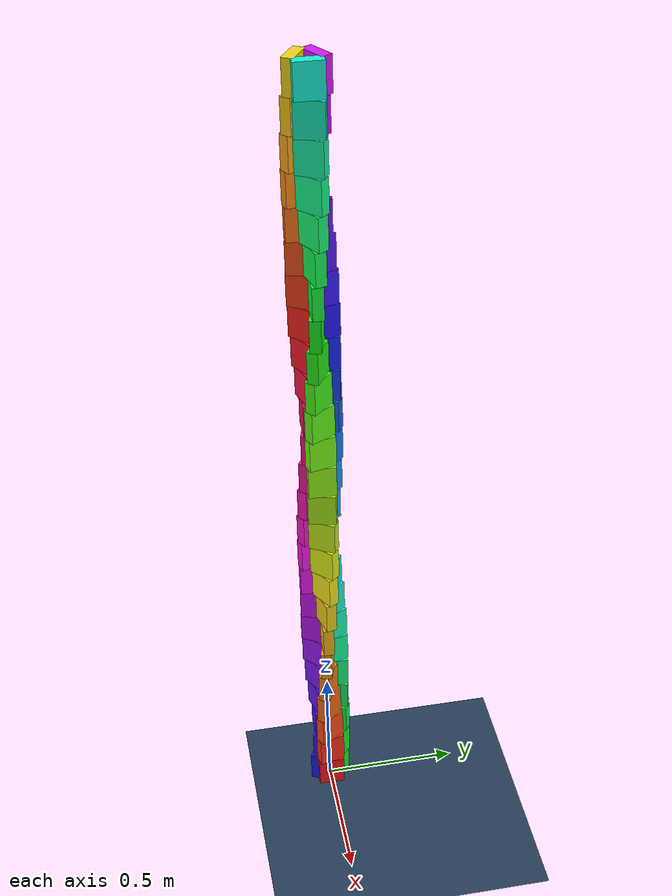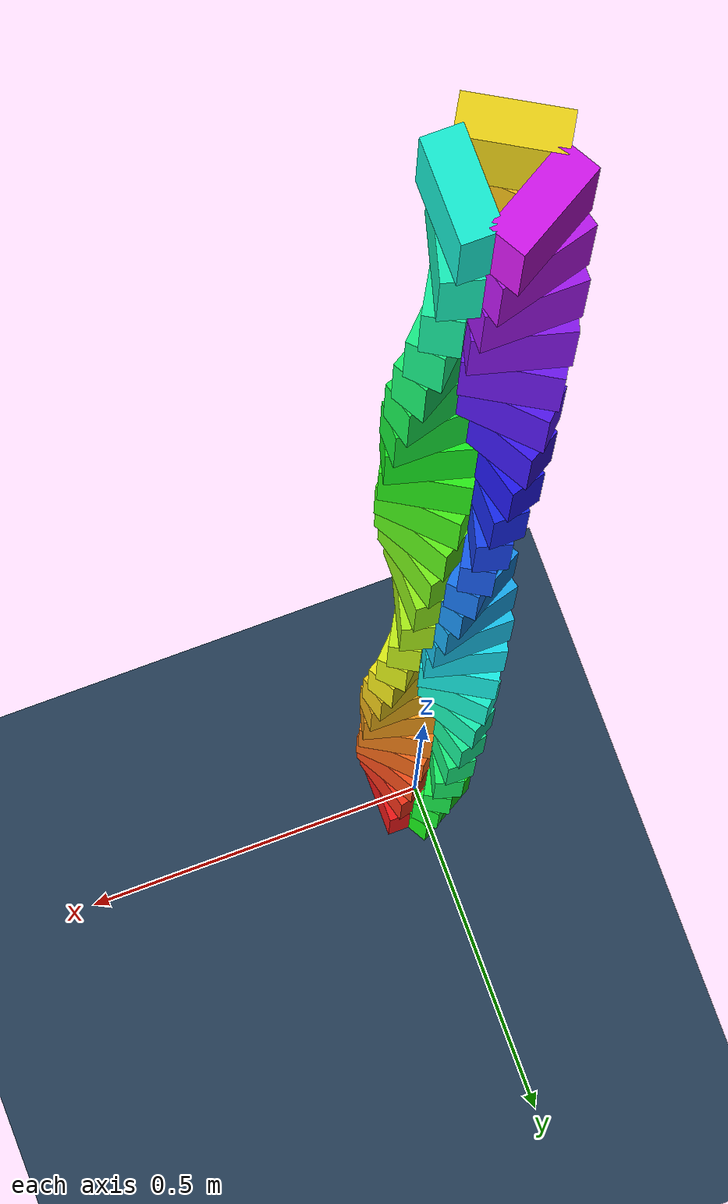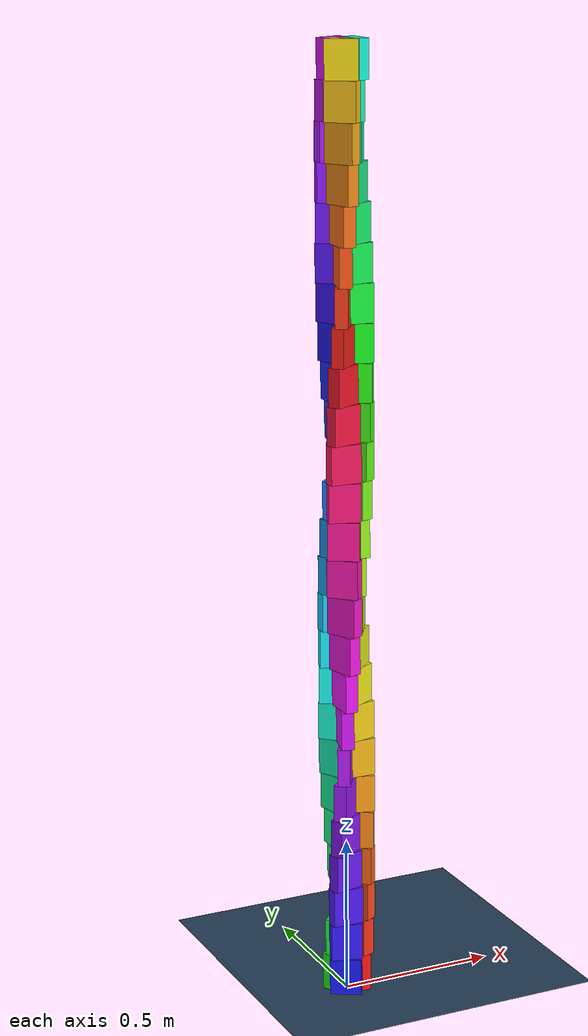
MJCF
<mujoco>
  <visual>
    <headlight diffuse="0.6 0.6 0.6" ambient="0.1 0.1 0.1" specular="0 0 0"/>
    <rgba haze="0.15 0.25 0.35 1"/>
    <global azimuth="120" elevation="-20"/>
  </visual>
  <asset>
    <texture type="skybox" builtin="gradient" rgb1="0.3 0.5 0.7" rgb2="0 0 0" width="512" height="3072"/>
    <texture type="2d" name="groundplane" builtin="checker" mark="edge" rgb1="0.2 0.3 0.4" rgb2="0.1 0.2 0.3" markrgb="0.8 0.8 0.8" width="300" height="300"/>
    <material name="groundplane" texture="groundplane" texuniform="true" texrepeat="5 5" reflectance="0.2"/>
  </asset>
  <worldbody>
    <light pos="0 0 1.5" dir="0 0 -1" directional="true"/>
    <geom name="floor" size="0 0 0.05" type="plane" material="groundplane"/>
    <body pos="0.0400 0.0000 0.0600" euler="0 0 0.0">
      <geom type="box" size="0.02 0.05 0.06" rgba="0.950 0.095 0.095 1"/>
      <freejoint/>
    </body>
    <body pos="0.0400 0.0000 0.1800" euler="0 0 15.0">
      <geom type="box" size="0.02 0.05 0.06" rgba="0.950 0.198 0.095 1"/>
      <freejoint/>
    </body>
    <body pos="0.0400 0.0000 0.3000" euler="0 0 30.0">
      <geom type="box" size="0.02 0.05 0.06" rgba="0.950 0.300 0.095 1"/>
      <freejoint/>
    </body>
    <body pos="0.0400 0.0000 0.4200" euler="0 0 45.0">
      <geom type="box" size="0.02 0.05 0.06" rgba="0.950 0.403 0.095 1"/>
      <freejoint/>
    </body>
    <body pos="0.0400 0.0000 0.5400" euler="0 0 60.0">
      <geom type="box" size="0.02 0.05 0.06" rgba="0.950 0.505 0.095 1"/>
      <freejoint/>
    </body>
    <body pos="0.0400 0.0000 0.6600" euler="0 0 75.0">
      <geom type="box" size="0.02 0.05 0.06" rgba="0.950 0.608 0.095 1"/>
      <freejoint/>
    </body>
    <body pos="0.0400 0.0000 0.7800" euler="0 0 90.0">
      <geom type="box" size="0.02 0.05 0.06" rgba="0.950 0.711 0.095 1"/>
      <freejoint/>
    </body>
    <body pos="0.0400 0.0000 0.9000" euler="0 0 105.0">
      <geom type="box" size="0.02 0.05 0.06" rgba="0.950 0.813 0.095 1"/>
      <freejoint/>
    </body>
    <body pos="0.0400 0.0000 1.0200" euler="0 0 120.0">
      <geom type="box" size="0.02 0.05 0.06" rgba="0.950 0.916 0.095 1"/>
      <freejoint/>
    </body>
    <body pos="0.0400 0.0000 1.1400" euler="0 0 135.0">
      <geom type="box" size="0.02 0.05 0.06" rgba="0.882 0.950 0.095 1"/>
      <freejoint/>
    </body>
    <body pos="0.0400 0.0000 1.2600" euler="0 0 150.0">
      <geom type="box" size="0.02 0.05 0.06" rgba="0.779 0.950 0.095 1"/>
      <freejoint/>
    </body>
    <body pos="0.0400 0.0000 1.3800" euler="0 0 165.0">
      <geom type="box" size="0.02 0.05 0.06" rgba="0.676 0.950 0.095 1"/>
      <freejoint/>
    </body>
    <body pos="0.0400 0.0000 1.5000" euler="0 0 180.0">
      <geom type="box" size="0.02 0.05 0.06" rgba="0.574 0.950 0.095 1"/>
      <freejoint/>
    </body>
    <body pos="0.0400 0.0000 1.6200" euler="0 0 195.0">
      <geom type="box" size="0.02 0.05 0.06" rgba="0.471 0.950 0.095 1"/>
      <freejoint/>
    </body>
    <body pos="0.0400 0.0000 1.7400" euler="0 0 210.0">
      <geom type="box" size="0.02 0.05 0.06" rgba="0.369 0.950 0.095 1"/>
      <freejoint/>
    </body>
    <body pos="0.0400 0.0000 1.8600" euler="0 0 225.0">
      <geom type="box" size="0.02 0.05 0.06" rgba="0.266 0.950 0.095 1"/>
      <freejoint/>
    </body>
    <body pos="0.0400 0.0000 1.9800" euler="0 0 240.0">
      <geom type="box" size="0.02 0.05 0.06" rgba="0.163 0.950 0.095 1"/>
      <freejoint/>
    </body>
    <body pos="0.0400 0.0000 2.1000" euler="0 0 255.0">
      <geom type="box" size="0.02 0.05 0.06" rgba="0.095 0.950 0.129 1"/>
      <freejoint/>
    </body>
    <body pos="0.0400 0.0000 2.2200" euler="0 0 270.0">
      <geom type="box" size="0.02 0.05 0.06" rgba="0.095 0.950 0.232 1"/>
      <freejoint/>
    </body>
    <body pos="0.0400 0.0000 2.3400" euler="0 0 285.0">
      <geom type="box" size="0.02 0.05 0.06" rgba="0.095 0.950 0.334 1"/>
      <freejoint/>
    </body>
    <body pos="0.0400 0.0000 2.4600" euler="0 0 300.0">
      <geom type="box" size="0.02 0.05 0.06" rgba="0.095 0.950 0.437 1"/>
      <freejoint/>
    </body>
    <body pos="0.0400 0.0000 2.5800" euler="0 0 315.0">
      <geom type="box" size="0.02 0.05 0.06" rgba="0.095 0.950 0.540 1"/>
      <freejoint/>
    </body>
    <body pos="0.0400 0.0000 2.7000" euler="0 0 330.0">
      <geom type="box" size="0.02 0.05 0.06" rgba="0.095 0.950 0.642 1"/>
      <freejoint/>
    </body>
    <body pos="0.0400 0.0000 2.8200" euler="0 0 345.0">
      <geom type="box" size="0.02 0.05 0.06" rgba="0.095 0.950 0.745 1"/>
      <freejoint/>
    </body>
    <body pos="0.0400 0.0000 2.9400" euler="0 0 360.0">
      <geom type="box" size="0.02 0.05 0.06" rgba="0.095 0.950 0.847 1"/>
      <freejoint/>
    </body>
    <body pos="-0.0200 0.0346 0.0600" euler="0 0 120.0">
      <geom type="box" size="0.02 0.05 0.06" rgba="0.095 0.950 0.095 1"/>
      <freejoint/>
    </body>
    <body pos="-0.0200 0.0346 0.1800" euler="0 0 135.0">
      <geom type="box" size="0.02 0.05 0.06" rgba="0.095 0.950 0.198 1"/>
      <freejoint/>
    </body>
    <body pos="-0.0200 0.0346 0.3000" euler="0 0 150.0">
      <geom type="box" size="0.02 0.05 0.06" rgba="0.095 0.950 0.300 1"/>
      <freejoint/>
    </body>
    <body pos="-0.0200 0.0346 0.4200" euler="0 0 165.0">
      <geom type="box" size="0.02 0.05 0.06" rgba="0.095 0.950 0.403 1"/>
      <freejoint/>
    </body>
    <body pos="-0.0200 0.0346 0.5400" euler="0 0 180.0">
      <geom type="box" size="0.02 0.05 0.06" rgba="0.095 0.950 0.505 1"/>
      <freejoint/>
    </body>
    <body pos="-0.0200 0.0346 0.6600" euler="0 0 195.0">
      <geom type="box" size="0.02 0.05 0.06" rgba="0.095 0.950 0.608 1"/>
      <freejoint/>
    </body>
    <body pos="-0.0200 0.0346 0.7800" euler="0 0 210.0">
      <geom type="box" size="0.02 0.05 0.06" rgba="0.095 0.950 0.711 1"/>
      <freejoint/>
    </body>
    <body pos="-0.0200 0.0346 0.9000" euler="0 0 225.0">
      <geom type="box" size="0.02 0.05 0.06" rgba="0.095 0.950 0.813 1"/>
      <freejoint/>
    </body>
    <body pos="-0.0200 0.0346 1.0200" euler="0 0 240.0">
      <geom type="box" size="0.02 0.05 0.06" rgba="0.095 0.950 0.916 1"/>
      <freejoint/>
    </body>
    <body pos="-0.0200 0.0346 1.1400" euler="0 0 255.0">
      <geom type="box" size="0.02 0.05 0.06" rgba="0.095 0.882 0.950 1"/>
      <freejoint/>
    </body>
    <body pos="-0.0200 0.0346 1.2600" euler="0 0 270.0">
      <geom type="box" size="0.02 0.05 0.06" rgba="0.095 0.779 0.950 1"/>
      <freejoint/>
    </body>
    <body pos="-0.0200 0.0346 1.3800" euler="0 0 285.0">
      <geom type="box" size="0.02 0.05 0.06" rgba="0.095 0.676 0.950 1"/>
      <freejoint/>
    </body>
    <body pos="-0.0200 0.0346 1.5000" euler="0 0 300.0">
      <geom type="box" size="0.02 0.05 0.06" rgba="0.095 0.574 0.950 1"/>
      <freejoint/>
    </body>
    <body pos="-0.0200 0.0346 1.6200" euler="0 0 315.0">
      <geom type="box" size="0.02 0.05 0.06" rgba="0.095 0.471 0.950 1"/>
      <freejoint/>
    </body>
    <body pos="-0.0200 0.0346 1.7400" euler="0 0 330.0">
      <geom type="box" size="0.02 0.05 0.06" rgba="0.095 0.369 0.950 1"/>
      <freejoint/>
    </body>
    <body pos="-0.0200 0.0346 1.8600" euler="0 0 345.0">
      <geom type="box" size="0.02 0.05 0.06" rgba="0.095 0.266 0.950 1"/>
      <freejoint/>
    </body>
    <body pos="-0.0200 0.0346 1.9800" euler="0 0 360.0">
      <geom type="box" size="0.02 0.05 0.06" rgba="0.095 0.163 0.950 1"/>
      <freejoint/>
    </body>
    <body pos="-0.0200 0.0346 2.1000" euler="0 0 375.0">
      <geom type="box" size="0.02 0.05 0.06" rgba="0.129 0.095 0.950 1"/>
      <freejoint/>
    </body>
    <body pos="-0.0200 0.0346 2.2200" euler="0 0 390.0">
      <geom type="box" size="0.02 0.05 0.06" rgba="0.232 0.095 0.950 1"/>
      <freejoint/>
    </body>
    <body pos="-0.0200 0.0346 2.3400" euler="0 0 405.0">
      <geom type="box" size="0.02 0.05 0.06" rgba="0.334 0.095 0.950 1"/>
      <freejoint/>
    </body>
    <body pos="-0.0200 0.0346 2.4600" euler="0 0 420.0">
      <geom type="box" size="0.02 0.05 0.06" rgba="0.437 0.095 0.950 1"/>
      <freejoint/>
    </body>
    <body pos="-0.0200 0.0346 2.5800" euler="0 0 435.0">
      <geom type="box" size="0.02 0.05 0.06" rgba="0.540 0.095 0.950 1"/>
      <freejoint/>
    </body>
    <body pos="-0.0200 0.0346 2.7000" euler="0 0 450.0">
      <geom type="box" size="0.02 0.05 0.06" rgba="0.642 0.095 0.950 1"/>
      <freejoint/>
    </body>
    <body pos="-0.0200 0.0346 2.8200" euler="0 0 465.0">
      <geom type="box" size="0.02 0.05 0.06" rgba="0.745 0.095 0.950 1"/>
      <freejoint/>
    </body>
    <body pos="-0.0200 0.0346 2.9400" euler="0 0 480.0">
      <geom type="box" size="0.02 0.05 0.06" rgba="0.847 0.095 0.950 1"/>
      <freejoint/>
    </body>
    <body pos="-0.0200 -0.0346 0.0600" euler="0 0 240.0">
      <geom type="box" size="0.02 0.05 0.06" rgba="0.095 0.095 0.950 1"/>
      <freejoint/>
    </body>
    <body pos="-0.0200 -0.0346 0.1800" euler="0 0 255.0">
      <geom type="box" size="0.02 0.05 0.06" rgba="0.198 0.095 0.950 1"/>
      <freejoint/>
    </body>
    <body pos="-0.0200 -0.0346 0.3000" euler="0 0 270.0">
      <geom type="box" size="0.02 0.05 0.06" rgba="0.300 0.095 0.950 1"/>
      <freejoint/>
    </body>
    <body pos="-0.0200 -0.0346 0.4200" euler="0 0 285.0">
      <geom type="box" size="0.02 0.05 0.06" rgba="0.403 0.095 0.950 1"/>
      <freejoint/>
    </body>
    <body pos="-0.0200 -0.0346 0.5400" euler="0 0 300.0">
      <geom type="box" size="0.02 0.05 0.06" rgba="0.505 0.095 0.950 1"/>
      <freejoint/>
    </body>
    <body pos="-0.0200 -0.0346 0.6600" euler="0 0 315.0">
      <geom type="box" size="0.02 0.05 0.06" rgba="0.608 0.095 0.950 1"/>
      <freejoint/>
    </body>
    <body pos="-0.0200 -0.0346 0.7800" euler="0 0 330.0">
      <geom type="box" size="0.02 0.05 0.06" rgba="0.711 0.095 0.950 1"/>
      <freejoint/>
    </body>
    <body pos="-0.0200 -0.0346 0.9000" euler="0 0 345.0">
      <geom type="box" size="0.02 0.05 0.06" rgba="0.813 0.095 0.950 1"/>
      <freejoint/>
    </body>
    <body pos="-0.0200 -0.0346 1.0200" euler="0 0 360.0">
      <geom type="box" size="0.02 0.05 0.06" rgba="0.916 0.095 0.950 1"/>
      <freejoint/>
    </body>
    <body pos="-0.0200 -0.0346 1.1400" euler="0 0 375.0">
      <geom type="box" size="0.02 0.05 0.06" rgba="0.950 0.095 0.882 1"/>
      <freejoint/>
    </body>
    <body pos="-0.0200 -0.0346 1.2600" euler="0 0 390.0">
      <geom type="box" size="0.02 0.05 0.06" rgba="0.950 0.095 0.779 1"/>
      <freejoint/>
    </body>
    <body pos="-0.0200 -0.0346 1.3800" euler="0 0 405.0">
      <geom type="box" size="0.02 0.05 0.06" rgba="0.950 0.095 0.676 1"/>
      <freejoint/>
    </body>
    <body pos="-0.0200 -0.0346 1.5000" euler="0 0 420.0">
      <geom type="box" size="0.02 0.05 0.06" rgba="0.950 0.095 0.574 1"/>
      <freejoint/>
    </body>
    <body pos="-0.0200 -0.0346 1.6200" euler="0 0 435.0">
      <geom type="box" size="0.02 0.05 0.06" rgba="0.950 0.095 0.471 1"/>
      <freejoint/>
    </body>
    <body pos="-0.0200 -0.0346 1.7400" euler="0 0 450.0">
      <geom type="box" size="0.02 0.05 0.06" rgba="0.950 0.095 0.369 1"/>
      <freejoint/>
    </body>
    <body pos="-0.0200 -0.0346 1.8600" euler="0 0 465.0">
      <geom type="box" size="0.02 0.05 0.06" rgba="0.950 0.095 0.266 1"/>
      <freejoint/>
    </body>
    <body pos="-0.0200 -0.0346 1.9800" euler="0 0 480.0">
      <geom type="box" size="0.02 0.05 0.06" rgba="0.950 0.095 0.163 1"/>
      <freejoint/>
    </body>
    <body pos="-0.0200 -0.0346 2.1000" euler="0 0 495.0">
      <geom type="box" size="0.02 0.05 0.06" rgba="0.950 0.129 0.095 1"/>
      <freejoint/>
    </body>
    <body pos="-0.0200 -0.0346 2.2200" euler="0 0 510.0">
      <geom type="box" size="0.02 0.05 0.06" rgba="0.950 0.232 0.095 1"/>
      <freejoint/>
    </body>
    <body pos="-0.0200 -0.0346 2.3400" euler="0 0 525.0">
      <geom type="box" size="0.02 0.05 0.06" rgba="0.950 0.334 0.095 1"/>
      <freejoint/>
    </body>
    <body pos="-0.0200 -0.0346 2.4600" euler="0 0 540.0">
      <geom type="box" size="0.02 0.05 0.06" rgba="0.950 0.437 0.095 1"/>
      <freejoint/>
    </body>
    <body pos="-0.0200 -0.0346 2.5800" euler="0 0 555.0">
      <geom type="box" size="0.02 0.05 0.06" rgba="0.950 0.540 0.095 1"/>
      <freejoint/>
    </body>
    <body pos="-0.0200 -0.0346 2.7000" euler="0 0 570.0">
      <geom type="box" size="0.02 0.05 0.06" rgba="0.950 0.642 0.095 1"/>
      <freejoint/>
    </body>
    <body pos="-0.0200 -0.0346 2.8200" euler="0 0 585.0">
      <geom type="box" size="0.02 0.05 0.06" rgba="0.950 0.745 0.095 1"/>
      <freejoint/>
    </body>
    <body pos="-0.0200 -0.0346 2.9400" euler="0 0 600.0">
      <geom type="box" size="0.02 0.05 0.06" rgba="0.950 0.847 0.095 1"/>
      <freejoint/>
    </body>
  </worldbody>
</mujoco>
